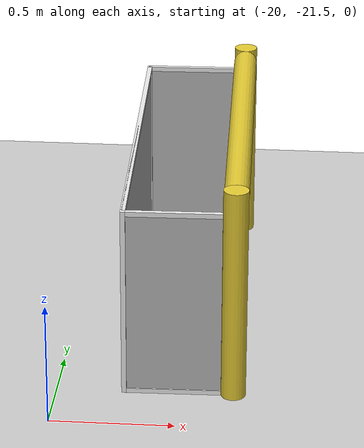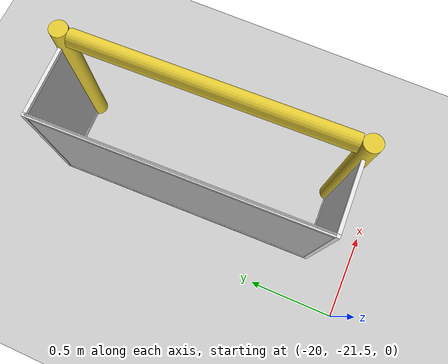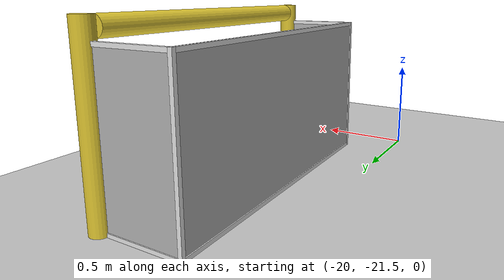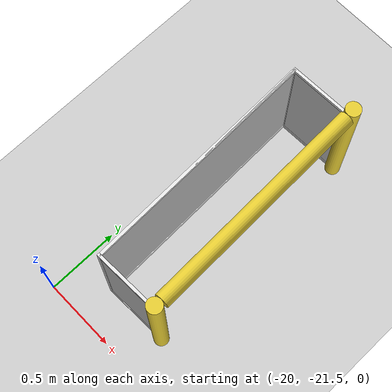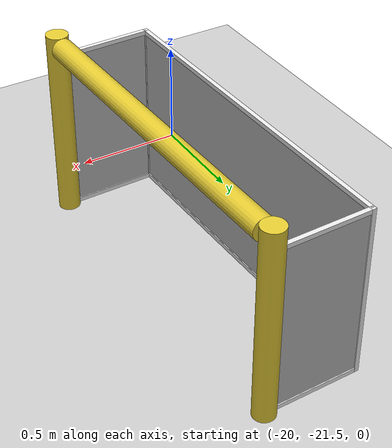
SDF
<sdf version="1.6">
 <world name="default">
  <model name="ground_plane">
   <static>1</static>
   <link name="link">
    <collision name="collision">
     <geometry><plane><normal>0 0 1</normal><size>100 100</size></plane></geometry>
     <surface>
      <contact><collide_bitmask>65535</collide_bitmask></contact>
      <friction><ode><mu>100</mu><mu2>50</mu2></ode></friction>
     </surface>
    </collision>
    <visual name="visual">
     <cast_shadows>0</cast_shadows>
     <geometry><plane><normal>0 0 1</normal><size>100 100</size></plane></geometry>
     <material>
      <script><uri>file://media/materials/scripts/gazebo.material</uri><name>Gazebo/Grey</name></script>
     </material>
    </visual>
   </link>
  </model>
  <model name="RoboCup 2014 SPL Goal_0">
   <static>1</static>
   <link name="left_post">
    <pose>0 0.8 0.45 0 -0 0</pose>
    <collision name="collision">
     <geometry><cylinder><radius>0.05</radius><length>0.9</length></cylinder></geometry>
    </collision>
    <visual name="visual">
     <geometry><cylinder><radius>0.05</radius><length>0.9</length></cylinder></geometry>
     <material>
      <script><uri>file://media/materials/scripts/gazebo.material</uri><name>Gazebo/ZincYellow</name></script>
     </material>
    </visual>
   </link>
   <link name="left_support_horiz_lower">
    <pose>0.24 0.8 0.01 0 -0 0</pose>
    <collision name="collision"><geometry><box><size>0.38 0.02 0.02</size></box></geometry></collision>
    <visual name="visual">
     <geometry><box><size>0.38 0.02 0.02</size></box></geometry>
     <material>
      <script><uri>file://media/materials/scripts/gazebo.material</uri><name>Gazebo/White</name></script>
     </material>
    </visual>
   </link>
   <link name="left_support_horiz_upper">
    <pose>0.24 0.8 0.79 0 -0 0</pose>
    <collision name="collision"><geometry><box><size>0.38 0.02 0.02</size></box></geometry></collision>
    <visual name="visual">
     <geometry><box><size>0.38 0.02 0.02</size></box></geometry>
     <material>
      <script><uri>file://media/materials/scripts/gazebo.material</uri><name>Gazebo/White</name></script>
     </material>
    </visual>
   </link>
   <link name="left_support_vertical">
    <pose>0.44 0.8 0.4 3.14159 1.57079 3.14159</pose>
    <collision name="collision"><geometry><box><size>0.8 0.02 0.02</size></box></geometry></collision>
    <visual name="visual">
     <geometry><box><size>0.8 0.02 0.02</size></box></geometry>
     <material>
      <script><uri>file://media/materials/scripts/gazebo.material</uri><name>Gazebo/White</name></script>
     </material>
    </visual>
   </link>
   <link name="right_support_horiz_lower">
    <pose>0.24 -0.8 0.01 0 -0 0</pose>
    <collision name="collision"><geometry><box><size>0.38 0.02 0.02</size></box></geometry></collision>
    <visual name="visual">
     <geometry><box><size>0.38 0.02 0.02</size></box></geometry>
     <material>
      <script><uri>file://media/materials/scripts/gazebo.material</uri><name>Gazebo/White</name></script>
     </material>
    </visual>
   </link>
   <link name="right_support_horiz_upper">
    <pose>0.24 -0.8 0.79 0 -0 0</pose>
    <collision name="collision"><geometry><box><size>0.38 0.02 0.02</size></box></geometry></collision>
    <visual name="visual">
     <geometry><box><size>0.38 0.02 0.02</size></box></geometry>
     <material>
      <script><uri>file://media/materials/scripts/gazebo.material</uri><name>Gazebo/White</name></script>
     </material>
    </visual>
   </link>
   <link name="right_support_vertical">
    <pose>0.44 -0.8 0.4 3.14159 1.57079 3.14159</pose>
    <collision name="collision"><geometry><box><size>0.8 0.02 0.02</size></box></geometry></collision>
    <visual name="visual">
     <geometry><box><size>0.8 0.02 0.02</size></box></geometry>
     <material>
      <script><uri>file://media/materials/scripts/gazebo.material</uri><name>Gazebo/White</name></script>
     </material>
    </visual>
   </link>
   <link name="center_support_horiz_lower">
    <pose>0.44 0 0.01 3.14159 1.57079 3.14159</pose>
    <collision name="collision"><geometry><box><size>0.02 1.58 0.02</size></box></geometry></collision>
    <visual name="visual">
     <geometry><box><size>0.02 1.58 0.02</size></box></geometry>
     <material>
      <script><uri>file://media/materials/scripts/gazebo.material</uri><name>Gazebo/White</name></script>
     </material>
    </visual>
   </link>
   <link name="center_support_horiz_upper">
    <pose>0.44 0 0.79 3.14159 1.57079 3.14159</pose>
    <collision name="collision"><geometry><box><size>0.02 1.58 0.02</size></box></geometry></collision>
    <visual name="visual">
     <geometry><box><size>0.02 1.58 0.02</size></box></geometry>
     <material>
      <script><uri>file://media/materials/scripts/gazebo.material</uri><name>Gazebo/White</name></script>
     </material>
    </visual>
   </link>
   <link name="right_post">
    <pose>0 -0.8 0.45 0 -0 0</pose>
    <collision name="collision">
     <geometry><cylinder><radius>0.05</radius><length>0.9</length></cylinder></geometry>
    </collision>
    <visual name="visual">
     <geometry><cylinder><radius>0.05</radius><length>0.9</length></cylinder></geometry>
     <material>
      <script><uri>file://media/materials/scripts/gazebo.material</uri><name>Gazebo/ZincYellow</name></script>
     </material>
    </visual>
   </link>
   <link name="crossbar">
    <pose>0 0 0.85 1.57 1.57 0</pose>
    <collision name="collision">
     <geometry><cylinder><radius>0.05</radius><length>1.5</length></cylinder></geometry>
    </collision>
    <visual name="visual">
     <geometry><cylinder><radius>0.05</radius><length>1.5</length></cylinder></geometry>
     <material>
      <script><uri>file://media/materials/scripts/gazebo.material</uri><name>Gazebo/ZincYellow</name></script>
     </material>
    </visual>
   </link>
   <link name="center_net">
    <pose>0.44 0 0.4 0 -0 0</pose>
    <collision name="collision"><geometry><box><size>0.01 1.6 0.8</size></box></geometry></collision>
    <visual name="visual">
     <geometry><box><size>0.01 1.6 0.8</size></box></geometry>
     <material>
      <script>
       <uri>model://robocup09_spl_field/materials/scripts/</uri>
       <uri>model://robocup09_spl_field/materials/textures/</uri>
       <name>RoboCup/Net</name>
      </script>
     </material>
    </visual>
   </link>
   <link name="left_net">
    <pose>0.24 0.8 0.4 0 -0 0</pose>
    <collision name="collision"><geometry><box><size>0.38 0.01 0.76</size></box></geometry></collision>
    <visual name="visual">
     <geometry><box><size>0.38 0.01 0.76</size></box></geometry>
     <material>
      <script>
       <uri>model://robocup09_spl_field/materials/scripts/</uri>
       <uri>model://robocup09_spl_field/materials/textures/</uri>
       <name>RoboCup/Net</name>
      </script>
     </material>
    </visual>
   </link>
   <link name="right_net">
    <pose>0.24 -0.8 0.4 0 -0 0</pose>
    <collision name="collision"><geometry><box><size>0.38 0.01 0.76</size></box></geometry></collision>
    <visual name="visual">
     <geometry><box><size>0.38 0.01 0.76</size></box></geometry>
     <material>
      <script>
       <uri>model://robocup09_spl_field/materials/scripts/</uri>
       <uri>model://robocup09_spl_field/materials/textures/</uri>
       <name>RoboCup/Net</name>
      </script>
     </material>
    </visual>
   </link>
   <pose>-19.3089 -20.4309 0 0 0 -3.11416</pose>
  </model>
 </world>
</sdf>
